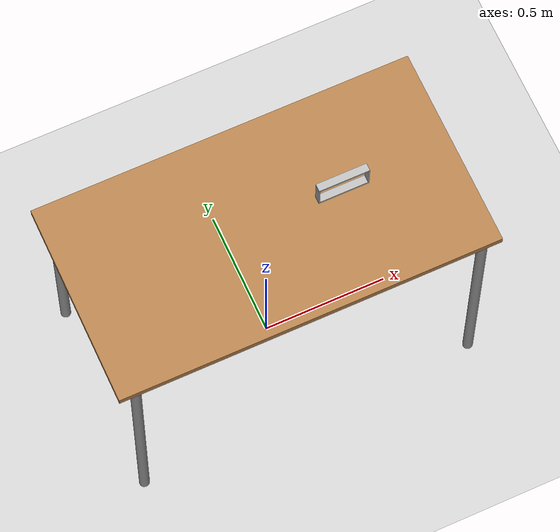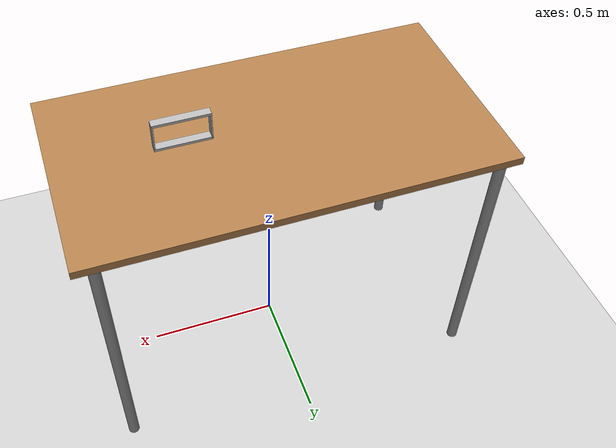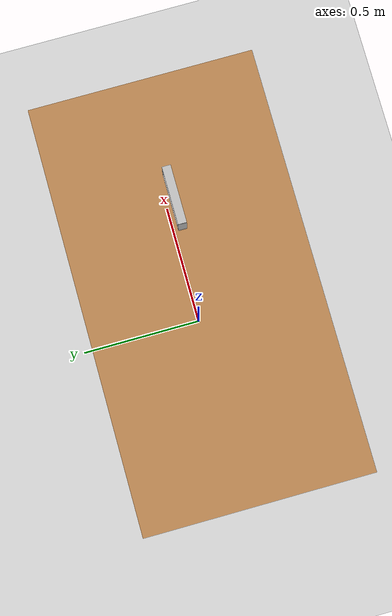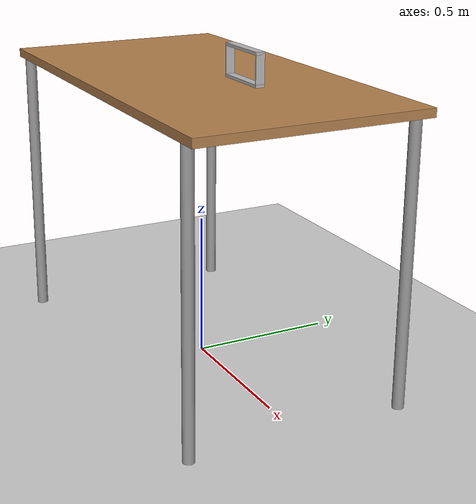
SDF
<sdf version="1.7">
 <world name="default">
  <gravity>0 0 -9.8</gravity>
  <light name="sun" type="directional">
   <pose>0 0 10 0 -0 0</pose>
   <diffuse>0.8 0.8 0.8 1</diffuse>
   <specular>0.2 0.2 0.2 1</specular>
   <attenuation>
    <range>1000</range>
    <constant>0.9</constant>
    <linear>0.01</linear>
    <quadratic>0.001</quadratic>
   </attenuation>
   <direction>-0.5 0.1 -0.9</direction>
   <spot><inner_angle>0</inner_angle><outer_angle>0</outer_angle><falloff>0</falloff></spot>
  </light>
  <model name="ground_plane">
   <static>1</static>
   <link name="link">
    <collision name="collision">
     <geometry><plane><normal>0 0 1</normal><size>100 100</size></plane></geometry>
     <surface><friction><ode><mu>100</mu><mu2>50</mu2></ode></friction></surface>
    </collision>
    <visual name="visual">
     <cast_shadows>0</cast_shadows>
     <geometry><plane><normal>0 0 1</normal><size>100 100</size></plane></geometry>
     <material>
      <script><uri>file://media/materials/scripts/gazebo.material</uri><name>Gazebo/Grey</name></script>
     </material>
    </visual>
   </link>
  </model>
  <model name="table">
   <static>1</static>
   <link name="table_base">
    <collision name="surface_collision">
     <pose>0 0 1 0 -0 0</pose>
     <geometry><box><size>1.5 0.8 0.03</size></box></geometry>
     <surface><friction><ode><mu>0.6</mu><mu2>0.6</mu2></ode></friction></surface>
    </collision>
    <visual name="surface_visual">
     <pose>0 0 1 0 -0 0</pose>
     <geometry><box><size>1.5 0.8 0.03</size></box></geometry>
     <material>
      <script><uri>file://media/materials/scripts/gazebo.material</uri><name>Gazebo/Wood</name></script>
     </material>
    </visual>
    <collision name="front_left_leg_collision">
     <pose>0.68 0.38 0.5 0 -0 0</pose>
     <geometry><cylinder><radius>0.02</radius><length>1</length></cylinder></geometry>
    </collision>
    <visual name="front_left_leg_visual">
     <pose>0.68 0.38 0.5 0 -0 0</pose>
     <geometry><cylinder><radius>0.02</radius><length>1</length></cylinder></geometry>
     <material>
      <script><uri>file://media/materials/scripts/gazebo.material</uri><name>Gazebo/Grey</name></script>
     </material>
    </visual>
    <collision name="front_right_leg_collision">
     <pose>0.68 -0.38 0.5 0 -0 0</pose>
     <geometry><cylinder><radius>0.02</radius><length>1</length></cylinder></geometry>
    </collision>
    <visual name="front_right_leg_visual">
     <pose>0.68 -0.38 0.5 0 -0 0</pose>
     <geometry><cylinder><radius>0.02</radius><length>1</length></cylinder></geometry>
     <material>
      <script><uri>file://media/materials/scripts/gazebo.material</uri><name>Gazebo/Grey</name></script>
     </material>
    </visual>
    <collision name="back_left_leg_collision">
     <pose>-0.68 0.38 0.5 0 -0 0</pose>
     <geometry><cylinder><radius>0.02</radius><length>1</length></cylinder></geometry>
    </collision>
    <visual name="back_left_leg_visual">
     <pose>-0.68 0.38 0.5 0 -0 0</pose>
     <geometry><cylinder><radius>0.02</radius><length>1</length></cylinder></geometry>
     <material>
      <script><uri>file://media/materials/scripts/gazebo.material</uri><name>Gazebo/Grey</name></script>
     </material>
    </visual>
    <collision name="back_right_leg_collision">
     <pose>-0.68 -0.38 0.5 0 -0 0</pose>
     <geometry><cylinder><radius>0.02</radius><length>1</length></cylinder></geometry>
    </collision>
    <visual name="back_right_leg_visual">
     <pose>-0.68 -0.38 0.5 0 -0 0</pose>
     <geometry><cylinder><radius>0.02</radius><length>1</length></cylinder></geometry>
     <material>
      <script><uri>file://media/materials/scripts/gazebo.material</uri><name>Gazebo/Grey</name></script>
     </material>
    </visual>
   </link>
  </model>
  <model name="frame">
   <pose>0.3 0 1.1 0 0 0</pose>
   <link name="link">
    <inertial>
     <mass>0.1</mass>
     <inertia><ixx>0.00083</ixx><iyy>0.00083</iyy><izz>0.00083</izz><ixy>0</ixy><ixz>0</ixz><iyz>0</iyz></inertia>
    </inertial>
    <collision name="top">
     <pose>0 0 0.05 0 0 0</pose>
     <geometry><box><size>0.2 0.03 0.01</size></box></geometry>
    </collision>
    <collision name="bottom">
     <pose>0 0 -0.05 0 0 0</pose>
     <geometry><box><size>0.2 0.03 0.01</size></box></geometry>
    </collision>
    <collision name="left">
     <pose>-0.0975 0 0 0 0 0</pose>
     <geometry><box><size>0.005 0.03 0.1</size></box></geometry>
    </collision>
    <collision name="right">
     <pose>0.0975 0 0 0 0 0</pose>
     <geometry><box><size>0.005 0.03 0.1</size></box></geometry>
    </collision>
    <visual name="visual_top">
     <pose>0 0 0.05 0 0 0</pose>
     <geometry><box><size>0.2 0.03 0.01</size></box></geometry>
    </visual>
    <visual name="visual_bottom">
     <pose>0 0 -0.05 0 0 0</pose>
     <geometry><box><size>0.2 0.03 0.01</size></box></geometry>
    </visual>
    <visual name="visual_left">
     <pose>-0.0975 0 0 0 0 0</pose>
     <geometry><box><size>0.005 0.03 0.1</size></box></geometry>
    </visual>
    <visual name="visual_right">
     <pose>0.0975 0 0 0 0 0</pose>
     <geometry><box><size>0.005 0.03 0.1</size></box></geometry>
    </visual>
   </link>
   <static>false</static>
  </model>
 </world>
</sdf>
